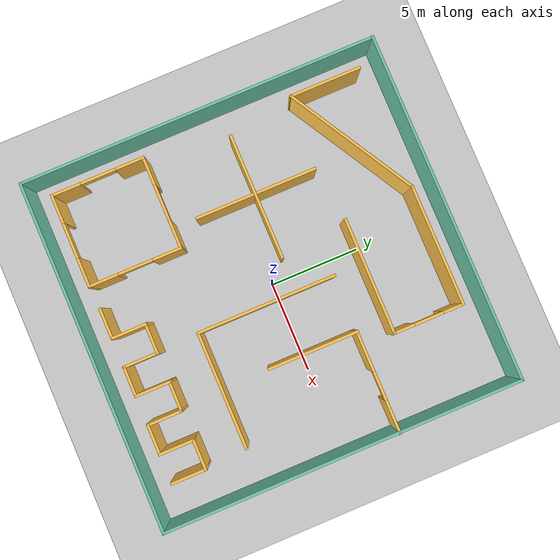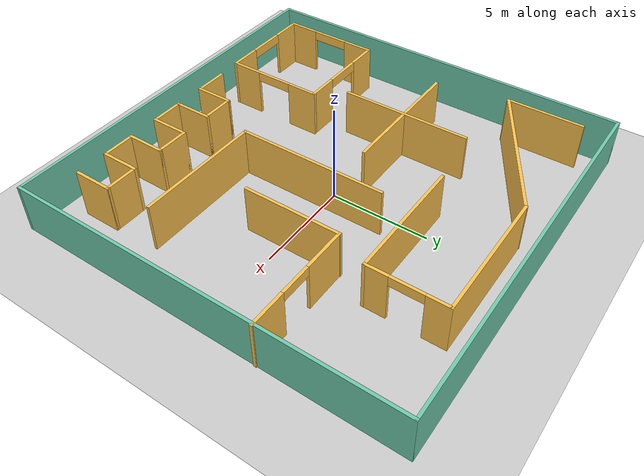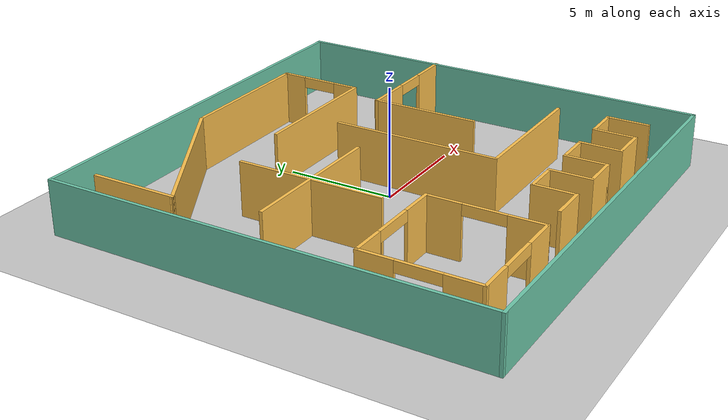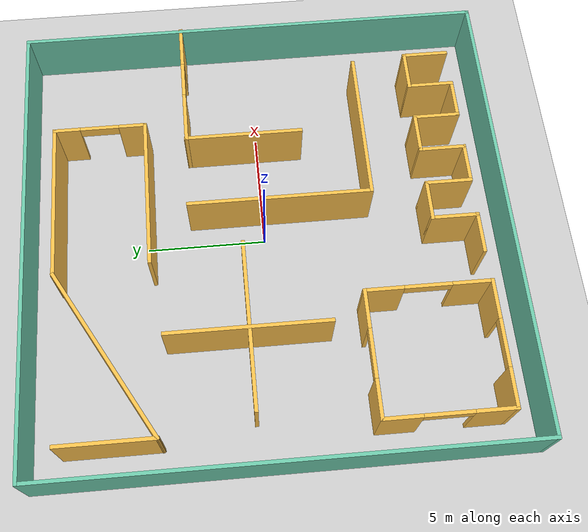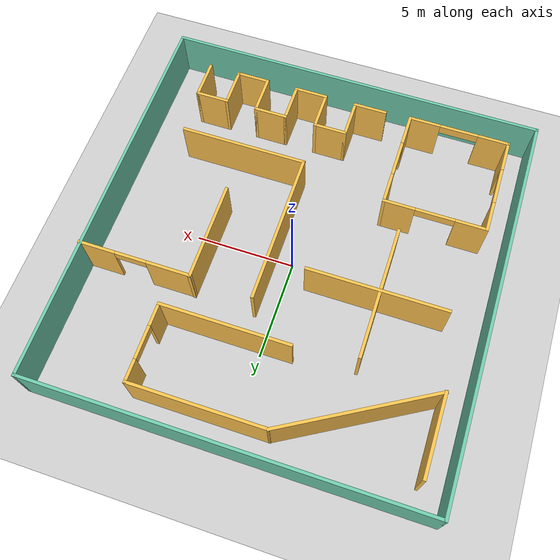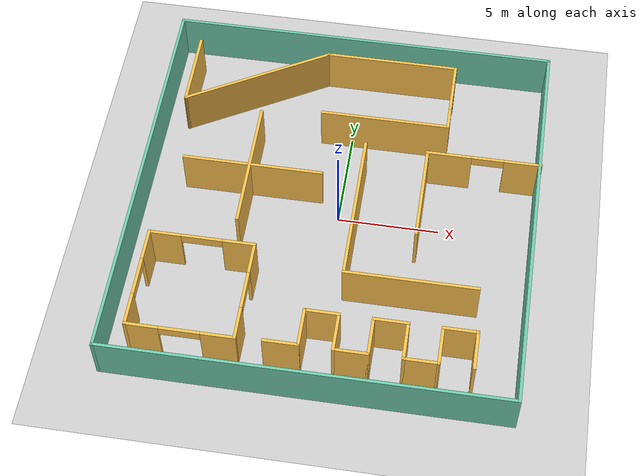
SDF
<sdf version='1.4'>
  <world name='default'>
    <!-- A global light source -->
    <include>
      <uri>model://sun</uri>
    </include>

    <!-- A ground plane -->
    <include>
      <uri>model://ground_plane</uri>
    </include>

    <physics type="ode">
      <real_time_update_rate>1000.0</real_time_update_rate>
      <max_step_size>0.001</max_step_size>
      <real_time_factor>1</real_time_factor>
      <ode>
        <solver>
          <type>quick</type>
          <iters>150</iters>
          <precon_iters>0</precon_iters>
          <sor>1.400000</sor>
          <use_dynamic_moi_rescaling>1</use_dynamic_moi_rescaling>
        </solver>
        <constraints>
          <cfm>0.00001</cfm>
          <erp>0.2</erp>
          <contact_max_correcting_vel>2000.000000</contact_max_correcting_vel>
          <contact_surface_layer>0.01000</contact_surface_layer>
        </constraints>
      </ode>
    </physics>

    <!-- A turtlebot symbol -->
    <include>
      <uri>model://turtlebot_maze_v1</uri>
    </include>

    <scene>
      <ambient>0.4 0.4 0.4 1</ambient>
      <background>0.7 0.7 0.7 1</background>
      <shadows>true</shadows>
    </scene>

    <gui fullscreen='0'>
      <camera name='user_camera'>
        <pose>0.0 0.0 17.0 0 1.5708 0</pose>
        <view_controller>orbit</view_controller>
      </camera>
    </gui>
  </world>
</sdf>

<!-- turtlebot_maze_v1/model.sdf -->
<sdf version='1.6'>
  <model name='turtlebot_maze_v1'>
    <pose frame=''>-0.079769 -0.105993 0 0 -0 0</pose>
    <link name='Wall_10'>
      <collision name='Wall_10_Collision'>
        <geometry>
          <box>
            <size>20 0.15 2.5</size>
          </box>
        </geometry>
        <pose frame=''>0 0 1.25 0 -0 0</pose>
      </collision>
      <visual name='Wall_10_Visual'>
        <pose frame=''>0 0 1.25 0 -0 0</pose>
        <geometry>
          <box>
            <size>20 0.15 2.5</size>
          </box>
        </geometry>
        <material>
          <script>
            <uri>file://media/materials/scripts/gazebo.material</uri>
            <name>Gazebo/Grey</name>
          </script>
          <ambient>0.435294 0.796078 0.67451 1</ambient>
        </material>
      </visual>
      <pose frame=''>9.65062 0 0 0 0 -1.5708</pose>
    </link>
    <link name='Wall_11'>
      <collision name='Wall_11_Collision'>
        <geometry>
          <box>
            <size>19.5 0.15 2.5</size>
          </box>
        </geometry>
        <pose frame=''>0 0 1.25 0 -0 0</pose>
      </collision>
      <visual name='Wall_11_Visual'>
        <pose frame=''>0 0 1.25 0 -0 0</pose>
        <geometry>
          <box>
            <size>19.5 0.15 2.5</size>
          </box>
        </geometry>
        <material>
          <script>
            <uri>file://media/materials/scripts/gazebo.material</uri>
            <name>Gazebo/Grey</name>
          </script>
          <ambient>0.435294 0.796078 0.67451 1</ambient>
        </material>
      </visual>
      <pose frame=''>-0.024383 -9.925 0 0 -0 3.14159</pose>
    </link>
    <link name='Wall_12'>
      <collision name='Wall_12_Collision'>
        <geometry>
          <box>
            <size>20 0.15 2.5</size>
          </box>
        </geometry>
        <pose frame=''>0 0 1.25 0 -0 0</pose>
      </collision>
      <visual name='Wall_12_Visual'>
        <pose frame=''>0 0 1.25 0 -0 0</pose>
        <geometry>
          <box>
            <size>20 0.15 2.5</size>
          </box>
        </geometry>
        <material>
          <script>
            <uri>file://media/materials/scripts/gazebo.material</uri>
            <name>Gazebo/Grey</name>
          </script>
          <ambient>0.435294 0.796078 0.67451 1</ambient>
        </material>
      </visual>
      <pose frame=''>-9.69938 0 0 0 -0 1.5708</pose>
    </link>
    <link name='Wall_14'>
      <collision name='Wall_14_Collision'>
        <geometry>
          <box>
            <size>4 0.15 2.5</size>
          </box>
        </geometry>
        <pose frame=''>0 0 1.25 0 -0 0</pose>
      </collision>
      <visual name='Wall_14_Visual'>
        <pose frame=''>0 0 1.25 0 -0 0</pose>
        <geometry>
          <box>
            <size>4 0.15 2.5</size>
          </box>
        </geometry>
        <material>
          <script>
            <uri>file://media/materials/scripts/gazebo.material</uri>
            <name>Gazebo/Grey</name>
          </script>
          <ambient>1 0.764706 0.305882 1</ambient>
        </material>
      </visual>
      <pose frame=''>-8.4825 6.69878 0 0 0 -1.5708</pose>
    </link>
    <link name='Wall_15'>
      <collision name='Wall_15_Collision'>
        <geometry>
          <box>
            <size>8 0.15 2.5</size>
          </box>
        </geometry>
        <pose frame=''>0 0 1.25 0 -0 0</pose>
      </collision>
      <visual name='Wall_15_Visual'>
        <pose frame=''>0 0 1.25 0 -0 0</pose>
        <geometry>
          <box>
            <size>8 0.15 2.5</size>
          </box>
        </geometry>
        <material>
          <script>
            <uri>file://media/materials/scripts/gazebo.material</uri>
            <name>Gazebo/Grey</name>
          </script>
          <ambient>1 0.764706 0.305882 1</ambient>
        </material>
      </visual>
      <pose frame=''>-5.08335 6.73628 0 0 -0 0.523599</pose>
    </link>
    <link name='Wall_16'>
      <collision name='Wall_16_Collision'>
        <geometry>
          <box>
            <size>6.75 0.15 2.5</size>
          </box>
        </geometry>
        <pose frame=''>0 0 1.25 0 -0 0</pose>
      </collision>
      <visual name='Wall_16_Visual'>
        <pose frame=''>0 0 1.25 0 -0 0</pose>
        <geometry>
          <box>
            <size>6.75 0.15 2.5</size>
          </box>
        </geometry>
        <material>
          <script>
            <uri>file://media/materials/scripts/gazebo.material</uri>
            <name>Gazebo/Grey</name>
          </script>
          <ambient>1 0.764706 0.305882 1</ambient>
        </material>
      </visual>
      <pose frame=''>1.6158 8.69878 0 0 -0 0</pose>
    </link>
    <link name='Wall_17'>
      <pose frame=''>4.9158 6.77378 0 0 0 -1.5708</pose>
      <visual name='Wall_17_Visual_0'>
        <pose frame=''>-1.41658 0 1.25 0 -0 0</pose>
        <geometry>
          <box>
            <size>1.16683 0.15 2.5</size>
          </box>
        </geometry>
        <material>
          <script>
            <uri>file://media/materials/scripts/gazebo.material</uri>
            <name>Gazebo/Grey</name>
          </script>
          <ambient>1 0.764706 0.305882 1</ambient>
        </material>
      </visual>
      <collision name='Wall_17_Collision_0'>
        <geometry>
          <box>
            <size>1.16683 0.15 2.5</size>
          </box>
        </geometry>
        <pose frame=''>-1.41658 0 1.25 0 -0 0</pose>
      </collision>
      <visual name='Wall_17_Visual_1'>
        <pose frame=''>1.40071 0 1.25 0 -0 0</pose>
        <geometry>
          <box>
            <size>1.19859 0.15 2.5</size>
          </box>
        </geometry>
        <material>
          <script>
            <uri>file://media/materials/scripts/gazebo.material</uri>
            <name>Gazebo/Grey</name>
          </script>
          <ambient>1 0.764706 0.305882 1</ambient>
        </material>
      </visual>
      <collision name='Wall_17_Collision_1'>
        <geometry>
          <box>
            <size>1.19859 0.15 2.5</size>
          </box>
        </geometry>
        <pose frame=''>1.40071 0 1.25 0 -0 0</pose>
      </collision>
      <visual name='Wall_17_Visual_2'>
        <pose frame=''>-0.015878 0 2.25 0 -0 0</pose>
        <geometry>
          <box>
            <size>1.63458 0.15 0.5</size>
          </box>
        </geometry>
        <material>
          <script>
            <uri>file://media/materials/scripts/gazebo.material</uri>
            <name>Gazebo/Grey</name>
          </script>
          <ambient>1 0.764706 0.305882 1</ambient>
        </material>
      </visual>
      <collision name='Wall_17_Collision_2'>
        <geometry>
          <box>
            <size>1.63458 0.15 0.5</size>
          </box>
        </geometry>
        <pose frame=''>-0.015878 0 2.25 0 -0 0</pose>
      </collision>
    </link>
    <link name='Wall_18'>
      <collision name='Wall_18_Collision'>
        <geometry>
          <box>
            <size>6.5 0.15 2.5</size>
          </box>
        </geometry>
        <pose frame=''>0 0 1.25 0 -0 0</pose>
      </collision>
      <visual name='Wall_18_Visual'>
        <pose frame=''>0 0 1.25 0 -0 0</pose>
        <geometry>
          <box>
            <size>6.5 0.15 2.5</size>
          </box>
        </geometry>
        <material>
          <script>
            <uri>file://media/materials/scripts/gazebo.material</uri>
            <name>Gazebo/Grey</name>
          </script>
          <ambient>1 0.764706 0.305882 1</ambient>
        </material>
      </visual>
      <pose frame=''>1.7408 4.84878 0 0 -0 3.14159</pose>
    </link>
    <link name='Wall_27'>
      <pose frame=''>-5.94327 -3.55019 0 0 -0 3.14159</pose>
      <visual name='Wall_27_Visual_0'>
        <pose frame=''>-1.80723 0 1.25 0 -0 0</pose>
        <geometry>
          <box>
            <size>1.63553 0.15 2.5</size>
          </box>
        </geometry>
        <material>
          <script>
            <uri>file://media/materials/scripts/gazebo.material</uri>
            <name>Gazebo/Grey</name>
          </script>
          <ambient>1 0.764706 0.305882 1</ambient>
        </material>
      </visual>
      <collision name='Wall_27_Collision_0'>
        <geometry>
          <box>
            <size>1.63553 0.15 2.5</size>
          </box>
        </geometry>
        <pose frame=''>-1.80723 0 1.25 0 -0 0</pose>
      </collision>
      <visual name='Wall_27_Visual_1'>
        <pose frame=''>1.80996 0 1.25 0 -0 0</pose>
        <geometry>
          <box>
            <size>1.63008 0.15 2.5</size>
          </box>
        </geometry>
        <material>
          <script>
            <uri>file://media/materials/scripts/gazebo.material</uri>
            <name>Gazebo/Grey</name>
          </script>
          <ambient>1 0.764706 0.305882 1</ambient>
        </material>
      </visual>
      <collision name='Wall_27_Collision_1'>
        <geometry>
          <box>
            <size>1.63008 0.15 2.5</size>
          </box>
        </geometry>
        <pose frame=''>1.80996 0 1.25 0 -0 0</pose>
      </collision>
      <visual name='Wall_27_Visual_2'>
        <pose frame=''>0.002726 0 2.25 0 -0 0</pose>
        <geometry>
          <box>
            <size>1.98438 0.15 0.5</size>
          </box>
        </geometry>
        <material>
          <script>
            <uri>file://media/materials/scripts/gazebo.material</uri>
            <name>Gazebo/Grey</name>
          </script>
          <ambient>1 0.764706 0.305882 1</ambient>
        </material>
      </visual>
      <collision name='Wall_27_Collision_2'>
        <geometry>
          <box>
            <size>1.98438 0.15 0.5</size>
          </box>
        </geometry>
        <pose frame=''>0.002726 0 2.25 0 -0 0</pose>
      </collision>
    </link>
    <link name='Wall_32'>
      <pose frame=''>-3.39327 -6.10019 0 0 0 -1.5708</pose>
      <visual name='Wall_32_Visual_0'>
        <pose frame=''>-1.79703 0 1.25 0 -0 0</pose>
        <geometry>
          <box>
            <size>1.65593 0.15 2.5</size>
          </box>
        </geometry>
        <material>
          <script>
            <uri>file://media/materials/scripts/gazebo.material</uri>
            <name>Gazebo/Grey</name>
          </script>
          <ambient>1 0.764706 0.305882 1</ambient>
        </material>
      </visual>
      <collision name='Wall_32_Collision_0'>
        <geometry>
          <box>
            <size>1.65593 0.15 2.5</size>
          </box>
        </geometry>
        <pose frame=''>-1.79703 0 1.25 0 -0 0</pose>
      </collision>
      <visual name='Wall_32_Visual_1'>
        <pose frame=''>1.78518 0 1.25 0 -0 0</pose>
        <geometry>
          <box>
            <size>1.67965 0.15 2.5</size>
          </box>
        </geometry>
        <material>
          <script>
            <uri>file://media/materials/scripts/gazebo.material</uri>
            <name>Gazebo/Grey</name>
          </script>
          <ambient>1 0.764706 0.305882 1</ambient>
        </material>
      </visual>
      <collision name='Wall_32_Collision_1'>
        <geometry>
          <box>
            <size>1.67965 0.15 2.5</size>
          </box>
        </geometry>
        <pose frame=''>1.78518 0 1.25 0 -0 0</pose>
      </collision>
      <visual name='Wall_32_Visual_2'>
        <pose frame=''>-0.011857 0 2.25 0 -0 0</pose>
        <geometry>
          <box>
            <size>1.91442 0.15 0.5</size>
          </box>
        </geometry>
        <material>
          <script>
            <uri>file://media/materials/scripts/gazebo.material</uri>
            <name>Gazebo/Grey</name>
          </script>
          <ambient>1 0.764706 0.305882 1</ambient>
        </material>
      </visual>
      <collision name='Wall_32_Collision_2'>
        <geometry>
          <box>
            <size>1.91442 0.15 0.5</size>
          </box>
        </geometry>
        <pose frame=''>-0.011857 0 2.25 0 -0 0</pose>
      </collision>
    </link>
    <link name='Wall_33'>
      <pose frame=''>-5.94327 -8.65019 0 0 -0 3.14159</pose>
      <visual name='Wall_33_Visual_0'>
        <pose frame=''>-1.79412 0 1.25 0 -0 0</pose>
        <geometry>
          <box>
            <size>1.66177 0.15 2.5</size>
          </box>
        </geometry>
        <material>
          <script>
            <uri>file://media/materials/scripts/gazebo.material</uri>
            <name>Gazebo/Grey</name>
          </script>
          <ambient>1 0.764706 0.305882 1</ambient>
        </material>
      </visual>
      <collision name='Wall_33_Collision_0'>
        <geometry>
          <box>
            <size>1.66177 0.15 2.5</size>
          </box>
        </geometry>
        <pose frame=''>-1.79412 0 1.25 0 -0 0</pose>
      </collision>
      <visual name='Wall_33_Visual_1'>
        <pose frame=''>1.80559 0 1.25 0 -0 0</pose>
        <geometry>
          <box>
            <size>1.63883 0.15 2.5</size>
          </box>
        </geometry>
        <material>
          <script>
            <uri>file://media/materials/scripts/gazebo.material</uri>
            <name>Gazebo/Grey</name>
          </script>
          <ambient>1 0.764706 0.305882 1</ambient>
        </material>
      </visual>
      <collision name='Wall_33_Collision_1'>
        <geometry>
          <box>
            <size>1.63883 0.15 2.5</size>
          </box>
        </geometry>
        <pose frame=''>1.80559 0 1.25 0 -0 0</pose>
      </collision>
      <visual name='Wall_33_Visual_2'>
        <pose frame=''>0.011471 0 2.25 0 -0 0</pose>
        <geometry>
          <box>
            <size>1.9494 0.15 0.5</size>
          </box>
        </geometry>
        <material>
          <script>
            <uri>file://media/materials/scripts/gazebo.material</uri>
            <name>Gazebo/Grey</name>
          </script>
          <ambient>1 0.764706 0.305882 1</ambient>
        </material>
      </visual>
      <collision name='Wall_33_Collision_2'>
        <geometry>
          <box>
            <size>1.9494 0.15 0.5</size>
          </box>
        </geometry>
        <pose frame=''>0.011471 0 2.25 0 -0 0</pose>
      </collision>
    </link>
    <link name='Wall_34'>
      <pose frame=''>-8.49327 -6.10019 0 0 -0 1.5708</pose>
      <visual name='Wall_34_Visual_0'>
        <pose frame=''>-1.78955 0 1.25 0 -0 0</pose>
        <geometry>
          <box>
            <size>1.6709 0.15 2.5</size>
          </box>
        </geometry>
        <material>
          <script>
            <uri>file://media/materials/scripts/gazebo.material</uri>
            <name>Gazebo/Grey</name>
          </script>
          <ambient>1 0.764706 0.305882 1</ambient>
        </material>
      </visual>
      <collision name='Wall_34_Collision_0'>
        <geometry>
          <box>
            <size>1.6709 0.15 2.5</size>
          </box>
        </geometry>
        <pose frame=''>-1.78955 0 1.25 0 -0 0</pose>
      </collision>
      <visual name='Wall_34_Visual_1'>
        <pose frame=''>1.81015 0 1.25 0 -0 0</pose>
        <geometry>
          <box>
            <size>1.6297 0.15 2.5</size>
          </box>
        </geometry>
        <material>
          <script>
            <uri>file://media/materials/scripts/gazebo.material</uri>
            <name>Gazebo/Grey</name>
          </script>
          <ambient>1 0.764706 0.305882 1</ambient>
        </material>
      </visual>
      <collision name='Wall_34_Collision_1'>
        <geometry>
          <box>
            <size>1.6297 0.15 2.5</size>
          </box>
        </geometry>
        <pose frame=''>1.81015 0 1.25 0 -0 0</pose>
      </collision>
      <visual name='Wall_34_Visual_2'>
        <pose frame=''>0.020602 0 2.25 0 -0 0</pose>
        <geometry>
          <box>
            <size>1.9494 0.15 0.5</size>
          </box>
        </geometry>
        <material>
          <script>
            <uri>file://media/materials/scripts/gazebo.material</uri>
            <name>Gazebo/Grey</name>
          </script>
          <ambient>1 0.764706 0.305882 1</ambient>
        </material>
      </visual>
      <collision name='Wall_34_Collision_2'>
        <geometry>
          <box>
            <size>1.9494 0.15 0.5</size>
          </box>
        </geometry>
        <pose frame=''>0.020602 0 2.25 0 -0 0</pose>
      </collision>
    </link>
    <link name='Wall_36'>
      <collision name='Wall_36_Collision'>
        <geometry>
          <box>
            <size>1.75 0.15 2.5</size>
          </box>
        </geometry>
        <pose frame=''>0 0 1.25 0 -0 0</pose>
      </collision>
      <visual name='Wall_36_Visual'>
        <pose frame=''>0 0 1.25 0 -0 0</pose>
        <geometry>
          <box>
            <size>1.75 0.15 2.5</size>
          </box>
        </geometry>
        <material>
          <script>
            <uri>file://media/materials/scripts/gazebo.material</uri>
            <name>Gazebo/Grey</name>
          </script>
          <ambient>1 0.764706 0.305882 1</ambient>
        </material>
      </visual>
      <pose frame=''>-1.27967 -8.57973 0 0 -0 0</pose>
    </link>
    <link name='Wall_37'>
      <collision name='Wall_37_Collision'>
        <geometry>
          <box>
            <size>2 0.15 2.5</size>
          </box>
        </geometry>
        <pose frame=''>0 0 1.25 0 -0 0</pose>
      </collision>
      <visual name='Wall_37_Visual'>
        <pose frame=''>0 0 1.25 0 -0 0</pose>
        <geometry>
          <box>
            <size>2 0.15 2.5</size>
          </box>
        </geometry>
        <material>
          <script>
            <uri>file://media/materials/scripts/gazebo.material</uri>
            <name>Gazebo/Grey</name>
          </script>
          <ambient>1 0.764706 0.305882 1</ambient>
        </material>
      </visual>
      <pose frame=''>-0.479667 -7.65473 0 0 -0 1.5708</pose>
    </link>
    <link name='Wall_38'>
      <collision name='Wall_38_Collision'>
        <geometry>
          <box>
            <size>1.75 0.15 2.5</size>
          </box>
        </geometry>
        <pose frame=''>0 0 1.25 0 -0 0</pose>
      </collision>
      <visual name='Wall_38_Visual'>
        <pose frame=''>0 0 1.25 0 -0 0</pose>
        <geometry>
          <box>
            <size>1.75 0.15 2.5</size>
          </box>
        </geometry>
        <material>
          <script>
            <uri>file://media/materials/scripts/gazebo.material</uri>
            <name>Gazebo/Grey</name>
          </script>
          <ambient>1 0.764706 0.305882 1</ambient>
        </material>
      </visual>
      <pose frame=''>0.320333 -6.72973 0 0 -0 0</pose>
    </link>
    <link name='Wall_41'>
      <collision name='Wall_41_Collision'>
        <geometry>
          <box>
            <size>2 0.15 2.5</size>
          </box>
        </geometry>
        <pose frame=''>0 0 1.25 0 -0 0</pose>
      </collision>
      <visual name='Wall_41_Visual'>
        <pose frame=''>0 0 1.25 0 -0 0</pose>
        <geometry>
          <box>
            <size>2 0.15 2.5</size>
          </box>
        </geometry>
        <material>
          <script>
            <uri>file://media/materials/scripts/gazebo.material</uri>
            <name>Gazebo/Grey</name>
          </script>
          <ambient>1 0.764706 0.305882 1</ambient>
        </material>
      </visual>
      <pose frame=''>1.12033 -7.65473 0 0 0 -1.5708</pose>
    </link>
    <link name='Wall_42'>
      <collision name='Wall_42_Collision'>
        <geometry>
          <box>
            <size>1.75 0.15 2.5</size>
          </box>
        </geometry>
        <pose frame=''>0 0 1.25 0 -0 0</pose>
      </collision>
      <visual name='Wall_42_Visual'>
        <pose frame=''>0 0 1.25 0 -0 0</pose>
        <geometry>
          <box>
            <size>1.75 0.15 2.5</size>
          </box>
        </geometry>
        <material>
          <script>
            <uri>file://media/materials/scripts/gazebo.material</uri>
            <name>Gazebo/Grey</name>
          </script>
          <ambient>1 0.764706 0.305882 1</ambient>
        </material>
      </visual>
      <pose frame=''>1.92033 -8.57973 0 0 -0 0</pose>
    </link>
    <link name='Wall_43'>
      <collision name='Wall_43_Collision'>
        <geometry>
          <box>
            <size>2 0.15 2.5</size>
          </box>
        </geometry>
        <pose frame=''>0 0 1.25 0 -0 0</pose>
      </collision>
      <visual name='Wall_43_Visual'>
        <pose frame=''>0 0 1.25 0 -0 0</pose>
        <geometry>
          <box>
            <size>2 0.15 2.5</size>
          </box>
        </geometry>
        <material>
          <script>
            <uri>file://media/materials/scripts/gazebo.material</uri>
            <name>Gazebo/Grey</name>
          </script>
          <ambient>1 0.764706 0.305882 1</ambient>
        </material>
      </visual>
      <pose frame=''>2.72033 -7.65473 0 0 -0 1.5708</pose>
    </link>
    <link name='Wall_44'>
      <collision name='Wall_44_Collision'>
        <geometry>
          <box>
            <size>1.75 0.15 2.5</size>
          </box>
        </geometry>
        <pose frame=''>0 0 1.25 0 -0 0</pose>
      </collision>
      <visual name='Wall_44_Visual'>
        <pose frame=''>0 0 1.25 0 -0 0</pose>
        <geometry>
          <box>
            <size>1.75 0.15 2.5</size>
          </box>
        </geometry>
        <material>
          <script>
            <uri>file://media/materials/scripts/gazebo.material</uri>
            <name>Gazebo/Grey</name>
          </script>
          <ambient>1 0.764706 0.305882 1</ambient>
        </material>
      </visual>
      <pose frame=''>3.52033 -6.72973 0 0 -0 0</pose>
    </link>
    <link name='Wall_45'>
      <collision name='Wall_45_Collision'>
        <geometry>
          <box>
            <size>2 0.15 2.5</size>
          </box>
        </geometry>
        <pose frame=''>0 0 1.25 0 -0 0</pose>
      </collision>
      <visual name='Wall_45_Visual'>
        <pose frame=''>0 0 1.25 0 -0 0</pose>
        <geometry>
          <box>
            <size>2 0.15 2.5</size>
          </box>
        </geometry>
        <material>
          <script>
            <uri>file://media/materials/scripts/gazebo.material</uri>
            <name>Gazebo/Grey</name>
          </script>
          <ambient>1 0.764706 0.305882 1</ambient>
        </material>
      </visual>
      <pose frame=''>4.32033 -7.65473 0 0 0 -1.5708</pose>
    </link>
    <link name='Wall_46'>
      <collision name='Wall_46_Collision'>
        <geometry>
          <box>
            <size>1.75 0.15 2.5</size>
          </box>
        </geometry>
        <pose frame=''>0 0 1.25 0 -0 0</pose>
      </collision>
      <visual name='Wall_46_Visual'>
        <pose frame=''>0 0 1.25 0 -0 0</pose>
        <geometry>
          <box>
            <size>1.75 0.15 2.5</size>
          </box>
        </geometry>
        <material>
          <script>
            <uri>file://media/materials/scripts/gazebo.material</uri>
            <name>Gazebo/Grey</name>
          </script>
          <ambient>1 0.764706 0.305882 1</ambient>
        </material>
      </visual>
      <pose frame=''>5.12033 -8.57973 0 0 -0 0</pose>
    </link>
    <link name='Wall_47'>
      <collision name='Wall_47_Collision'>
        <geometry>
          <box>
            <size>2 0.15 2.5</size>
          </box>
        </geometry>
        <pose frame=''>0 0 1.25 0 -0 0</pose>
      </collision>
      <visual name='Wall_47_Visual'>
        <pose frame=''>0 0 1.25 0 -0 0</pose>
        <geometry>
          <box>
            <size>2 0.15 2.5</size>
          </box>
        </geometry>
        <material>
          <script>
            <uri>file://media/materials/scripts/gazebo.material</uri>
            <name>Gazebo/Grey</name>
          </script>
          <ambient>1 0.764706 0.305882 1</ambient>
        </material>
      </visual>
      <pose frame=''>5.92033 -7.65473 0 0 -0 1.5708</pose>
    </link>
    <link name='Wall_48'>
      <collision name='Wall_48_Collision'>
        <geometry>
          <box>
            <size>1.75 0.15 2.5</size>
          </box>
        </geometry>
        <pose frame=''>0 0 1.25 0 -0 0</pose>
      </collision>
      <visual name='Wall_48_Visual'>
        <pose frame=''>0 0 1.25 0 -0 0</pose>
        <geometry>
          <box>
            <size>1.75 0.15 2.5</size>
          </box>
        </geometry>
        <material>
          <script>
            <uri>file://media/materials/scripts/gazebo.material</uri>
            <name>Gazebo/Grey</name>
          </script>
          <ambient>1 0.764706 0.305882 1</ambient>
        </material>
      </visual>
      <pose frame=''>6.72033 -6.72973 0 0 -0 0</pose>
    </link>
    <link name='Wall_49'>
      <collision name='Wall_49_Collision'>
        <geometry>
          <box>
            <size>2 0.15 2.5</size>
          </box>
        </geometry>
        <pose frame=''>0 0 1.25 0 -0 0</pose>
      </collision>
      <visual name='Wall_49_Visual'>
        <pose frame=''>0 0 1.25 0 -0 0</pose>
        <geometry>
          <box>
            <size>2 0.15 2.5</size>
          </box>
        </geometry>
        <material>
          <script>
            <uri>file://media/materials/scripts/gazebo.material</uri>
            <name>Gazebo/Grey</name>
          </script>
          <ambient>1 0.764706 0.305882 1</ambient>
        </material>
      </visual>
      <pose frame=''>7.52033 -7.65473 0 0 0 -1.5708</pose>
    </link>
    <link name='Wall_51'>
      <pose frame=''>6.89938 3.10852 0 0 -0 3.14159</pose>
      <visual name='Wall_51_Visual_0'>
        <pose frame=''>-1.92901 0 1.25 0 -0 0</pose>
        <geometry>
          <box>
            <size>1.89199 0.15 2.5</size>
          </box>
        </geometry>
        <material>
          <script>
            <uri>file://media/materials/scripts/gazebo.material</uri>
            <name>Gazebo/Grey</name>
          </script>
          <ambient>1 0.764706 0.305882 1</ambient>
        </material>
      </visual>
      <collision name='Wall_51_Collision_0'>
        <geometry>
          <box>
            <size>1.89199 0.15 2.5</size>
          </box>
        </geometry>
        <pose frame=''>-1.92901 0 1.25 0 -0 0</pose>
      </collision>
      <visual name='Wall_51_Visual_1'>
        <pose frame=''>1.7418 0 1.25 0 -0 0</pose>
        <geometry>
          <box>
            <size>2.26641 0.15 2.5</size>
          </box>
        </geometry>
        <material>
          <script>
            <uri>file://media/materials/scripts/gazebo.material</uri>
            <name>Gazebo/Grey</name>
          </script>
          <ambient>1 0.764706 0.305882 1</ambient>
        </material>
      </visual>
      <collision name='Wall_51_Collision_1'>
        <geometry>
          <box>
            <size>2.26641 0.15 2.5</size>
          </box>
        </geometry>
        <pose frame=''>1.7418 0 1.25 0 -0 0</pose>
      </collision>
      <visual name='Wall_51_Visual_2'>
        <pose frame=''>-0.18721 0 2.25 0 -0 0</pose>
        <geometry>
          <box>
            <size>1.5916 0.15 0.5</size>
          </box>
        </geometry>
        <material>
          <script>
            <uri>file://media/materials/scripts/gazebo.material</uri>
            <name>Gazebo/Grey</name>
          </script>
          <ambient>1 0.764706 0.305882 1</ambient>
        </material>
      </visual>
      <collision name='Wall_51_Collision_2'>
        <geometry>
          <box>
            <size>1.5916 0.15 0.5</size>
          </box>
        </geometry>
        <pose frame=''>-0.18721 0 2.25 0 -0 0</pose>
      </collision>
    </link>
    <link name='Wall_52'>
      <collision name='Wall_52_Collision'>
        <geometry>
          <box>
            <size>5.0532 0.15 2.5</size>
          </box>
        </geometry>
        <pose frame=''>0 0 1.25 0 -0 0</pose>
      </collision>
      <visual name='Wall_52_Visual'>
        <pose frame=''>0 0 1.25 0 -0 0</pose>
        <geometry>
          <box>
            <size>5.0532 0.15 2.5</size>
          </box>
        </geometry>
        <material>
          <script>
            <uri>file://media/materials/scripts/gazebo.material</uri>
            <name>Gazebo/Grey</name>
          </script>
          <ambient>1 0.764706 0.305882 1</ambient>
        </material>
      </visual>
      <pose frame=''>4.09938 0.683515 0 0 0 -1.5708</pose>
    </link>
    <link name='Wall_62'>
      <collision name='Wall_62_Collision'>
        <geometry>
          <box>
            <size>7.75 0.15 2.5</size>
          </box>
        </geometry>
        <pose frame=''>0 0 1.25 0 -0 0</pose>
      </collision>
      <visual name='Wall_62_Visual'>
        <pose frame=''>0 0 1.25 0 -0 0</pose>
        <geometry>
          <box>
            <size>7.75 0.15 2.5</size>
          </box>
        </geometry>
        <material>
          <script>
            <uri>file://media/materials/scripts/gazebo.material</uri>
            <name>Gazebo/Grey</name>
          </script>
          <ambient>1 0.764706 0.305882 1</ambient>
        </material>
      </visual>
      <pose frame=''>0.989385 -0.616268 0 0 0 -1.5708</pose>
    </link>
    <link name='Wall_63'>
      <collision name='Wall_63_Collision'>
        <geometry>
          <box>
            <size>6.5 0.15 2.5</size>
          </box>
        </geometry>
        <pose frame=''>0 0 1.25 0 -0 0</pose>
      </collision>
      <visual name='Wall_63_Visual'>
        <pose frame=''>0 0 1.25 0 -0 0</pose>
        <geometry>
          <box>
            <size>6.5 0.15 2.5</size>
          </box>
        </geometry>
        <material>
          <script>
            <uri>file://media/materials/scripts/gazebo.material</uri>
            <name>Gazebo/Grey</name>
          </script>
          <ambient>1 0.764706 0.305882 1</ambient>
        </material>
      </visual>
      <pose frame=''>4.16439 -4.41627 0 0 -0 0</pose>
    </link>
    <link name='Wall_65'>
      <collision name='Wall_65_Collision'>
        <geometry>
          <box>
            <size>7 0.15 2.5</size>
          </box>
        </geometry>
        <pose frame=''>0 0 1.25 0 -0 0</pose>
      </collision>
      <visual name='Wall_65_Visual'>
        <pose frame=''>0 0 1.25 0 -0 0</pose>
        <geometry>
          <box>
            <size>7 0.15 2.5</size>
          </box>
        </geometry>
        <material>
          <script>
            <uri>file://media/materials/scripts/gazebo.material</uri>
            <name>Gazebo/Grey</name>
          </script>
          <ambient>1 0.764706 0.305882 1</ambient>
        </material>
      </visual>
      <pose frame=''>-4.34513 1.07301 0 0 -0 0</pose>
    </link>
    <link name='Wall_67'>
      <collision name='Wall_67_Collision'>
        <geometry>
          <box>
            <size>6.75 0.15 2.5</size>
          </box>
        </geometry>
        <pose frame=''>0 0 1.25 0 -0 0</pose>
      </collision>
      <visual name='Wall_67_Visual'>
        <pose frame=''>0 0 1.25 0 -0 0</pose>
        <geometry>
          <box>
            <size>6.75 0.15 2.5</size>
          </box>
        </geometry>
        <material>
          <script>
            <uri>file://media/materials/scripts/gazebo.material</uri>
            <name>Gazebo/Grey</name>
          </script>
          <ambient>1 0.764706 0.305882 1</ambient>
        </material>
      </visual>
      <pose frame=''>-4.4985 1.11499 0 0 0 -1.5708</pose>
    </link>
    <link name='Wall_9'>
      <collision name='Wall_9_Collision'>
        <geometry>
          <box>
            <size>19.5 0.15 2.5</size>
          </box>
        </geometry>
        <pose frame=''>0 0 1.25 0 -0 0</pose>
      </collision>
      <visual name='Wall_9_Visual'>
        <pose frame=''>0 0 1.25 0 -0 0</pose>
        <geometry>
          <box>
            <size>19.5 0.15 2.5</size>
          </box>
        </geometry>
        <material>
          <script>
            <uri>file://media/materials/scripts/gazebo.material</uri>
            <name>Gazebo/Grey</name>
          </script>
          <ambient>0.435294 0.796078 0.67451 1</ambient>
        </material>
      </visual>
      <pose frame=''>-0.024383 9.925 0 0 -0 0</pose>
    </link>
    <static>1</static>
  </model>
</sdf>
